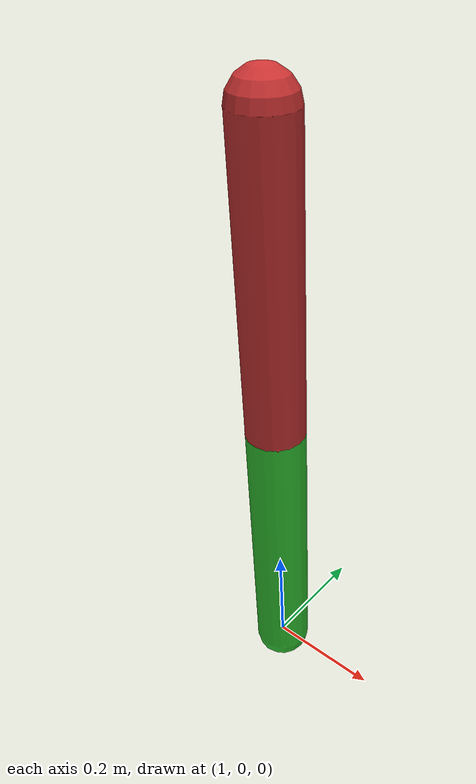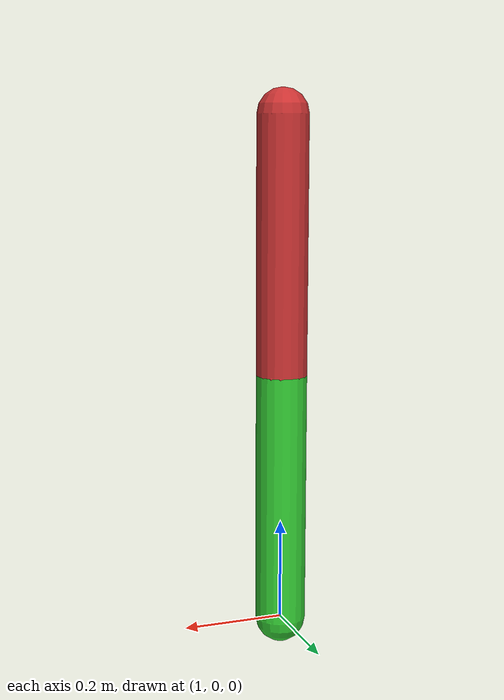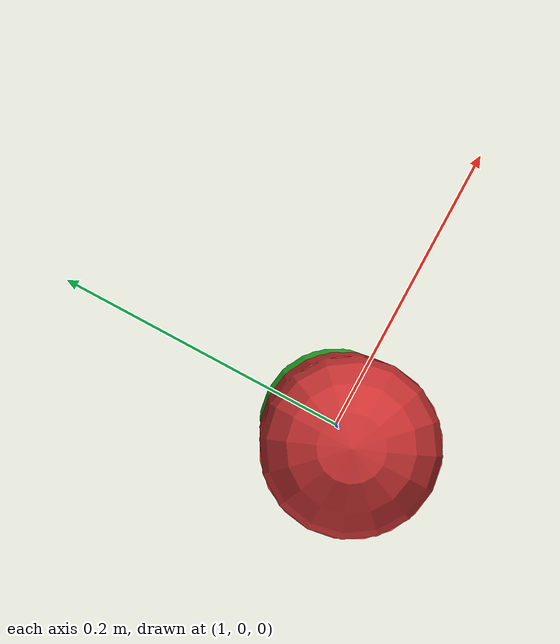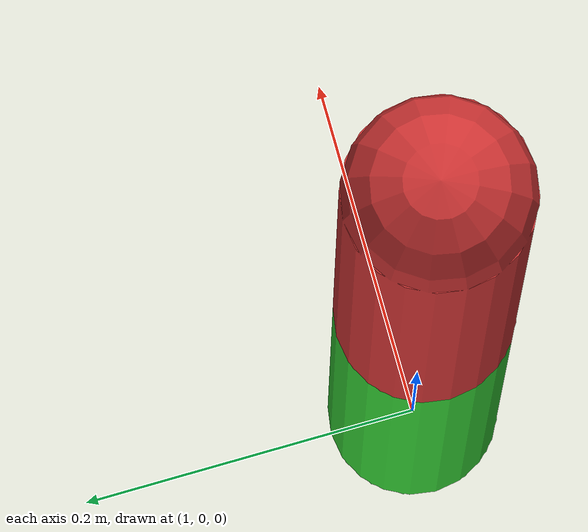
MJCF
<mujoco>
  <worldbody>
    <light diffuse="1 1 1" pos="0 0 3" dir="0 0 -1"/>
    <body name="link1" pos="1 0 1" euler="0 0 0">
      <geom type="capsule" fromto="0 0 0  0 0 -0.5" size="0.05" rgba="0.8 0.2 0.2 1"/>
      <body name="link2" pos="0 0 -0.5">
        <joint name="joint1" type="hinge" axis="0 1 0" damping="0.1"/>
        <geom type="capsule" fromto="0 0 0  0 0 -0.5" size="0.05" rgba="0.2 0.8 0.2 1"/>
      </body>
    </body>
  </worldbody>

  <actuator>
    <position name="servo_joint1" joint="joint1" kp="50"/>
  </actuator>
</mujoco>
